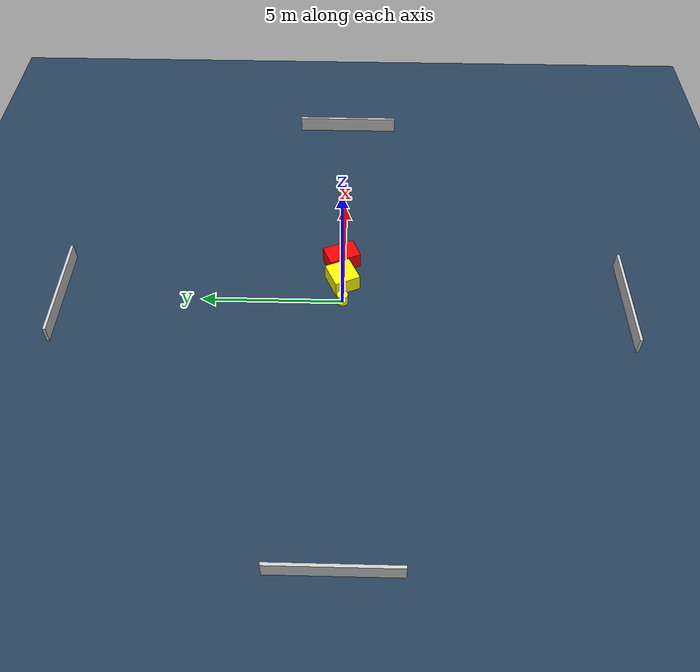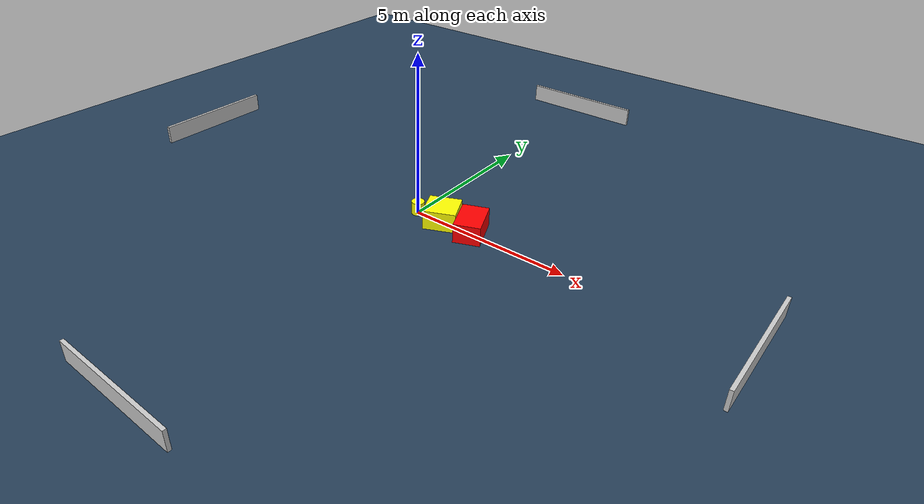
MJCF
<?xml version="1.0" ?>
<mujoco model="generated_environment">
  <option timestep="0.01" integrator="RK4" cone="elliptic"/>
  <default>
    <geom density="1"/>
  </default>
  <asset>
    <texture builtin="gradient" height="3072" name="skybox" rgb1="0.3 0.5 0.7" rgb2="0 0 0" type="skybox" width="512"/>
    <texture builtin="checker" height="300" name="groundplane" rgb1="0.2 0.3 0.4" rgb2="0.1 0.2 0.3" type="2d" width="300"/>
    <material name="groundplane" reflectance="0.2" texrepeat="5 5" texture="groundplane"/>
  </asset>
  <worldbody>
    <light dir="0 0 -1" directional="true" pos="0 0 1.5"/>
    <geom condim="3" friction="0.5 0.005 0.001" material="groundplane" name="floor" pos="0 0 0" size="0 0 0.05" type="plane"/>
    <body name="walls">
      <geom name="wall_1" condim="4" pos="-10.0 0.0 0.3" rgba="0.800000011920929 0.800000011920929 0.800000011920929 1.0" size="0.05 2.0 0.3" type="box"/>
      <geom name="wall_2" condim="4" pos="10.0 0.0 0.3" rgba="0.800000011920929 0.800000011920929 0.800000011920929 1.0" size="0.05 2.0 0.3" type="box"/>
      <geom name="wall_3" condim="4" pos="0.0 -10.0 0.3" rgba="0.800000011920929 0.800000011920929 0.800000011920929 1.0" size="2.0 0.05 0.3" type="box"/>
      <geom name="wall_4" condim="4" pos="0.0 10.0 0.3" rgba="0.800000011920929 0.800000011920929 0.800000011920929 1.0" size="2.0 0.05 0.3" type="box"/>
    </body>
    <body name="robot">
      <joint name="joint_x" type="slide" pos="0 0 0" axis="1 0 0"/>
      <joint name="joint_y" type="slide" pos="0 0 0" axis="0 1 0"/>
      <geom name="robot" type="cylinder" pos="0.0 0.0 0.2" size="0.2 0.2 0.0" mass="5.0" friction="1.0 0.005 0.0001" condim="4" rgba="1.0 1.0 0.0 1.0"/>
    </body>
    <body name="obstacle_1_movable">
      <geom name="obstacle_1_movable" condim="4" pos="0.9173700884379716 0.019409901519141418 0.3" euler="0 0 204.62931393814787" friction="0.0 0.005 0.001" rgba="1.0 1.0 0.0 1.0" size="0.4933325100333173 0.4705762909155825 0.3" type="box" mass="0.1"/>
      <joint type="free"/>
    </body>
    <body name="obstacle_2_static">
      <geom name="obstacle_2_static" condim="4" pos="1.9256785444727766 0.0717841477020406 0.3" euler="0 0 292.55726254253034" friction="0.0 0.005 0.001" rgba="1.0 0.0 0.0 1.0" size="0.5851730139268057 0.39979322496495423 0.3" type="box"/>
    </body>
  </worldbody>
  <actuator>
    <motor name="actuator_x" joint="joint_x" gear="1" ctrlrange="-1 1"/>
    <motor name="actuator_y" joint="joint_y" gear="1" ctrlrange="-1 1"/>
  </actuator>
</mujoco>
